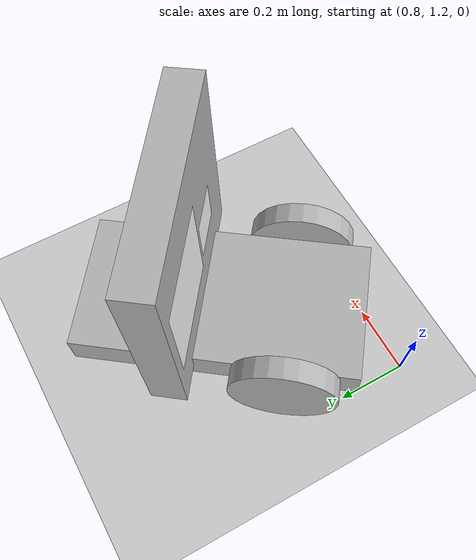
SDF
<sdf version="1.7">
 <world name="default">
  <light name="sun" type="directional">
   <pose>0 0 10 0 -0 0</pose>
   <diffuse>0.8 0.8 0.8 1</diffuse>
   <specular>0.2 0.2 0.2 1</specular>
   <attenuation>
    <range>1000</range>
    <constant>0.9</constant>
    <linear>0.01</linear>
    <quadratic>0.001</quadratic>
   </attenuation>
   <direction>-0.5 0.1 -0.9</direction>
   <spot><inner_angle>0</inner_angle><outer_angle>0</outer_angle><falloff>0</falloff></spot>
  </light>
  <model name="ground_plane">
   <static>1</static>
   <link name="link">
    <collision name="collision">
     <geometry><plane><normal>0 0 1</normal><size>100 100</size></plane></geometry>
     <surface><friction><ode><mu>100</mu><mu2>50</mu2></ode></friction></surface>
    </collision>
    <visual name="visual">
     <cast_shadows>0</cast_shadows>
     <geometry><plane><normal>0 0 1</normal><size>100 100</size></plane></geometry>
     <material>
      <script><uri>file://media/materials/scripts/gazebo.material</uri><name>Gazebo/Grey</name></script>
     </material>
    </visual>
   </link>
  </model>
  <gravity>0 0 -9.8</gravity>
  <magnetic_field>6e-06 2.3e-05 -4.2e-05</magnetic_field>
  <atmosphere type="adiabatic"/>
  <physics type="ode">
   <max_step_size>0.001</max_step_size>
   <real_time_factor>1</real_time_factor>
   <real_time_update_rate>1000</real_time_update_rate>
  </physics>
  <scene><ambient>0.4 0.4 0.4 1</ambient><background>0.7 0.7 0.7 1</background><shadows>1</shadows></scene>
  <spherical_coordinates>
   <surface_model>EARTH_WGS84</surface_model>
   <latitude_deg>0</latitude_deg>
   <longitude_deg>0</longitude_deg>
   <elevation>0</elevation>
   <heading_deg>0</heading_deg>
  </spherical_coordinates>
  <model name="me439_robot">
   <static>0</static>
   <link name="chassis">
    <pose>0 0 0.1 0 -0 0</pose>
    <inertial>
     <mass>1</mass>
     <inertia><ixx>0.083</ixx><ixy>0</ixy><ixz>0</ixz><iyy>0.083</iyy><iyz>0</iyz><izz>0.083</izz></inertia>
    </inertial>
    <collision name="collision"><geometry><box><size>0.8 0.4 0.1</size></box></geometry></collision>
    <visual name="visual"><geometry><box><size>0.8 0.4 0.1</size></box></geometry></visual>
    <collision name="caster_collision">
     <pose>-0.3 0 -0.06 0 -0 0</pose>
     <geometry><sphere><radius>0.06</radius></sphere></geometry>
     <surface><friction><ode><mu>0</mu><mu2>0</mu2><slip1>1</slip1><slip2>1</slip2></ode></friction></surface>
    </collision>
    <visual name="caster_visual">
     <pose>-0.3 0 -0.06 0 -0 0</pose>
     <geometry><sphere><radius>0.06</radius></sphere></geometry>
    </visual>
   </link>
   <link name="vertical_link">
    <pose relative_to="chassis">-0.1 0 0.3 0 -0 0</pose>
    <collision name="vertical_collision">
     <geometry><box><size>0.1 0.6 0.6</size></box></geometry>
     <inertial>
      <mass>1.0</mass>
      <inertia><ixx>0.083</ixx><ixy>0.0</ixy><ixz>0.0</ixz><iyy>0.083</iyy><iyz>0.0</iyz><izz>0.083</izz></inertia>
     </inertial>
    </collision>
    <visual name="vertical_visual"><geometry><box><size>0.1 0.6 0.6</size></box></geometry></visual>
    <inertial>
     <inertia><ixx>1</ixx><ixy>0</ixy><ixz>0</ixz><iyy>1</iyy><iyz>0</iyz><izz>1</izz></inertia>
     <mass>1</mass>
    </inertial>
   </link>
   <link name="aruco_marker_link">
    <pose relative_to="vertical_link">0.051 -0.12 0 -9.3e-05 1.57079 3.14159</pose>
    <visual name="visual">
     <geometry><box><size>0.296 0.296 1e-05</size></box></geometry>
     <material>
      <script>
       <uri>model://moving_platform_with_aruco/materials/scripts</uri>
       <uri>model://moving_platform_with_aruco/materials/textures</uri>
       <name>ArucoVisualMarker1/Marker</name>
      </script>
      <ambient>1 1 1 1</ambient>
      <diffuse>1 1 1 1</diffuse>
      <specular>0 0 0 1</specular>
      <emissive>1 1 1 0</emissive>
      <shader type="vertex"><normal_map>__default__</normal_map></shader>
     </material>
    </visual>
    <inertial>
     <inertia><ixx>1</ixx><ixy>0</ixy><ixz>0</ixz><iyy>1</iyy><iyz>0</iyz><izz>1</izz></inertia>
     <mass>1</mass>
    </inertial>
   </link>
   <link name="aruco_marker_link_2">
    <pose relative_to="vertical_link">0.051 0.11 -0.05 -9.3e-05 1.57079 3.14159</pose>
    <visual name="visual">
     <geometry><box><size>0.1355 0.1355 1e-05</size></box></geometry>
     <material>
      <script>
       <uri>model://marker_0/materials/scripts</uri>
       <uri>model://marker_0/materials/textures</uri>
       <name>ArucoVisualMarker0/Marker</name>
      </script>
      <ambient>1 1 1 1</ambient>
      <diffuse>1 1 1 1</diffuse>
      <specular>0 0 0 1</specular>
      <emissive>1 1 1 0</emissive>
      <shader type="vertex"><normal_map>__default__</normal_map></shader>
     </material>
    </visual>
    <inertial>
     <inertia><ixx>1</ixx><ixy>0</ixy><ixz>0</ixz><iyy>1</iyy><iyz>0</iyz><izz>1</izz></inertia>
     <mass>1</mass>
    </inertial>
   </link>
   <link name="left_wheel">
    <pose>0.2 0.23 0.1 -0 1.5707 1.5707</pose>
    <collision name="collision">
     <geometry><cylinder><radius>0.15</radius><length>0.06</length></cylinder></geometry>
    </collision>
    <visual name="visual">
     <geometry><cylinder><radius>0.15</radius><length>0.06</length></cylinder></geometry>
    </visual>
    <inertial>
     <inertia><ixx>1</ixx><ixy>0</ixy><ixz>0</ixz><iyy>1</iyy><iyz>0</iyz><izz>1</izz></inertia>
     <mass>1</mass>
    </inertial>
   </link>
   <link name="right_wheel">
    <pose>0.2 -0.23 0.1 -0 1.5707 1.5707</pose>
    <collision name="collision">
     <geometry><cylinder><radius>0.15</radius><length>0.06</length></cylinder></geometry>
    </collision>
    <visual name="visual">
     <geometry><cylinder><radius>0.15</radius><length>0.06</length></cylinder></geometry>
    </visual>
    <inertial>
     <inertia><ixx>1</ixx><ixy>0</ixy><ixz>0</ixz><iyy>1</iyy><iyz>0</iyz><izz>1</izz></inertia>
     <mass>1</mass>
    </inertial>
   </link>
   <joint name="vertical_platform" type="fixed">
    <child>vertical_link</child>
    <parent>chassis</parent>
    <axis><xyz>0 0 0</xyz><limit><lower>-1e+16</lower><upper>1e+16</upper></limit></axis>
   </joint>
   <joint name="aruco_1_fix" type="fixed">
    <child>aruco_marker_link</child>
    <parent>vertical_link</parent>
    <axis><xyz>0 0 0</xyz><limit><lower>-1e+16</lower><upper>1e+16</upper></limit></axis>
   </joint>
   <joint name="aruco_2_fix" type="fixed">
    <child>aruco_marker_link_2</child>
    <parent>vertical_link</parent>
    <axis><xyz>0 0 0</xyz><limit><lower>-1e+16</lower><upper>1e+16</upper></limit></axis>
   </joint>
   <joint name="left_wheel_hinge" type="revolute">
    <child>left_wheel</child>
    <parent>chassis</parent>
    <axis>
     <xyz>0 0 1</xyz>
     <limit><lower>-1e+16</lower><upper>1e+16</upper></limit>
     <dynamics><spring_reference>0</spring_reference><spring_stiffness>0</spring_stiffness></dynamics>
    </axis>
   </joint>
   <joint name="right_wheel_hinge" type="revolute">
    <child>right_wheel</child>
    <parent>chassis</parent>
    <axis>
     <xyz>0 0 1</xyz>
     <limit><lower>-1e+16</lower><upper>1e+16</upper></limit>
     <dynamics><spring_reference>0</spring_reference><spring_stiffness>0</spring_stiffness></dynamics>
    </axis>
   </joint>
   <plugin name="model_diff_drive_plugin" filename="libgazebo_ros_diff_drive.so">
    <ros>
     <namespace>/platform_robot</namespace>
     <remapping>cmd_vel:=cmd_platform_robot</remapping>
     <remapping>odom:=odom_platform_robot</remapping>
    </ros>
    <wheel_separation>0.46</wheel_separation>
    <wheel_diameter>0.3</wheel_diameter>
    <left_joint>left_wheel_hinge</left_joint>
    <right_joint>right_wheel_hinge</right_joint>
    <publish_odom>1</publish_odom>
   </plugin>
   <pose>1.17442 1.58147 0.038139 -4e-06 -0.060258 -2.22632</pose>
  </model>
 </world>
</sdf>
